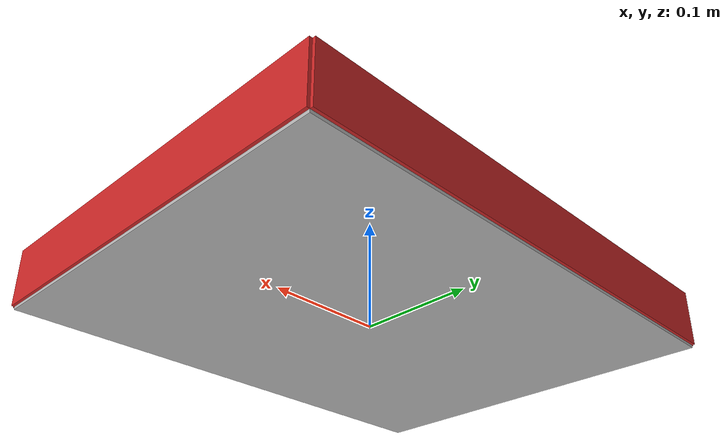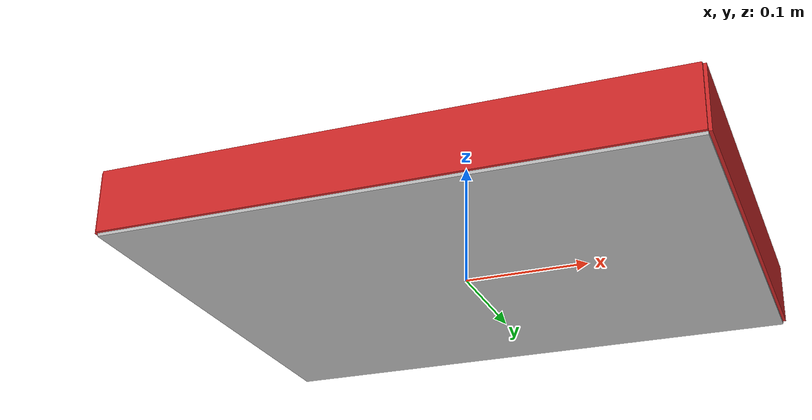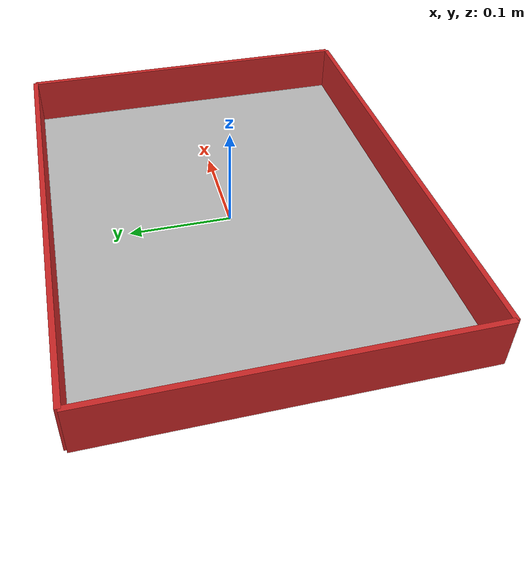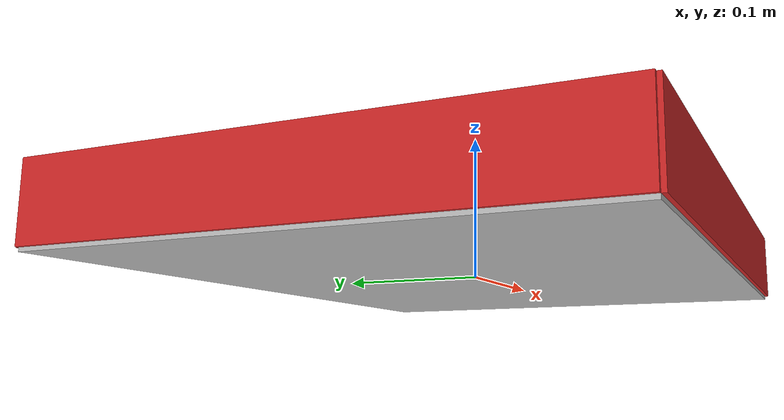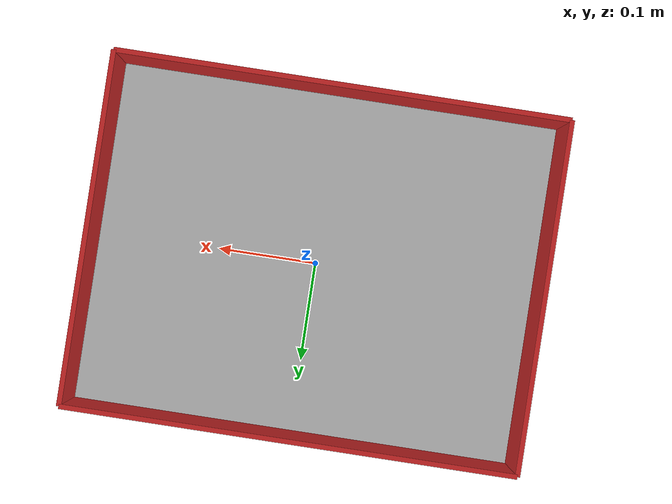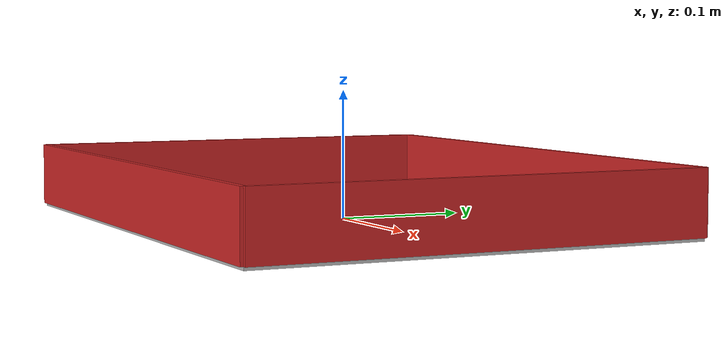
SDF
<sdf version='1.6'>
  <model name='storage'>
    <link name='storage-base'>
      <pose frame=''>0 0 0 0 -0 0</pose>
      <inertial>
        <pose frame=''>0 0 0 0 -0 0</pose>
        <mass>1</mass>
        <inertia>
          <ixx>1</ixx>
          <ixy>0.01</ixy>
          <ixz>0.01</ixz>
          <iyy>1</iyy>
          <iyz>0.01</iyz>
          <izz>1</izz>
        </inertia>
      </inertial>
      <collision name='storage-base_collision'>
        <pose frame=''>0 0 0 0 -0 0</pose>
        <geometry>
          <box>
            <size>0.45 0.35 0.005</size>
          </box>
        </geometry>
        <surface>
          <contact>
            <ode>
              <kp>1e+06</kp>
              <kd>1</kd>
              <min_depth>0.001</min_depth>
            </ode>
          </contact>
          <friction>
            <ode>
              <mu>1</mu>
              <mu2>1</mu2>
            </ode>
          </friction>
        </surface>
      </collision>
      <collision name='storage-base_collision_1'>
        <pose frame=''>0 -0.175 0.025 1.57 -0 0</pose>
        <geometry>
          <box>
            <size>0.45 0.05 0.005</size>
          </box>
        </geometry>
        <surface>
          <contact>
            <ode>
              <kp>1e+06</kp>
              <kd>1</kd>
              <min_depth>0.001</min_depth>
            </ode>
          </contact>
          <friction>
            <ode>
              <mu>1</mu>
              <mu2>1</mu2>
            </ode>
          </friction>
        </surface>
      </collision>
      <collision name='storage-base_collision_2'>
        <pose frame=''>0 0.175 0.025 1.57 -0 0</pose>
        <geometry>
          <box>
            <size>0.45 0.05 0.005</size>
          </box>
        </geometry>
        <surface>
          <contact>
            <ode>
              <kp>1e+06</kp>
              <kd>1</kd>
              <min_depth>0.001</min_depth>
            </ode>
          </contact>
          <friction>
            <ode>
              <mu>1</mu>
              <mu2>1</mu2>
            </ode>
          </friction>
        </surface>
      </collision>
      <collision name='storage-base_collision_3'>
        <pose frame=''>0.225 0 0.025 3.14159 1.57079 3.14159</pose>
        <geometry>
          <box>
            <size>0.05 0.35 0.005</size>
          </box>
        </geometry>
        <surface>
          <contact>
            <ode>
              <kp>1e+06</kp>
              <kd>1</kd>
              <min_depth>0.001</min_depth>
            </ode>
          </contact>
          <friction>
            <ode>
              <mu>1</mu>
              <mu2>1</mu2>
            </ode>
          </friction>
        </surface>
      </collision>
      <collision name='storage-base_collision_4'>
        <pose frame=''>-0.225 0 0.025 3.14159 1.57079 3.14159</pose>
        <geometry>
          <box>
            <size>0.05 0.35 0.005</size>
          </box>
        </geometry>
        <surface>
          <contact>
            <ode>
              <kp>1e+06</kp>
              <kd>1</kd>
              <min_depth>0.001</min_depth>
            </ode>
          </contact>
          <friction>
            <ode>
              <mu>1</mu>
              <mu2>1</mu2>
            </ode>
          </friction>
        </surface>
      </collision>
      <visual name='storage-base_visual'>
        <pose frame=''>0 0 0 0 -0 0</pose>
        <geometry>
          <box>
            <size>0.45 0.35 0.005</size>
          </box>
        </geometry>
        <material>
          <script>
            <uri>model://book/materials/scripts</uri>
            <uri>model://book/materials/textures</uri>
          </script>
        </material>
      </visual>
      <visual name='storage-base_visual_1'>
        <pose frame=''>0 -0.175 0.025 1.57 -0 0</pose>
        <geometry>
          <box>
            <size>0.45 0.05 0.005</size>
          </box>
        </geometry>
        <material>
          <script>
            <name>Gazebo/Red</name>
            <uri>file://media/materials/scripts/gazebo.material</uri>
          </script>
        </material>
      </visual>
      <visual name='storage-base_visual_2'>
        <pose frame=''>0 0.175 0.025 1.57 -0 0</pose>
        <geometry>
          <box>
            <size>0.45 0.05 0.005</size>
          </box>
        </geometry>
        <material>
          <script>
            <name>Gazebo/Red</name>
            <uri>file://media/materials/scripts/gazebo.material</uri>
          </script>
        </material>
      </visual>
      <visual name='storage-base_visual_3'>
        <pose frame=''>0.225 0 0.025 3.14159 1.57079 3.14159</pose>
        <geometry>
          <box>
            <size>0.05 0.35 0.005</size>
          </box>
        </geometry>
        <material>
          <script>
            <name>Gazebo/Red</name>
            <uri>file://media/materials/scripts/gazebo.material</uri>
          </script>
        </material>
      </visual>
      <visual name='storage-base_visual_4'>
        <pose frame=''>-0.225 0 0.025 3.14159 1.57079 3.14159</pose>
        <geometry>
          <box>
            <size>0.05 0.35 0.005</size>
          </box>
        </geometry>
        <material>
          <script>
            <name>Gazebo/Red</name>
            <uri>file://media/materials/scripts/gazebo.material</uri>
          </script>
        </material>
      </visual>
      <gravity>1</gravity>
      <velocity_decay/>
    </link>
  </model>
</sdf>
